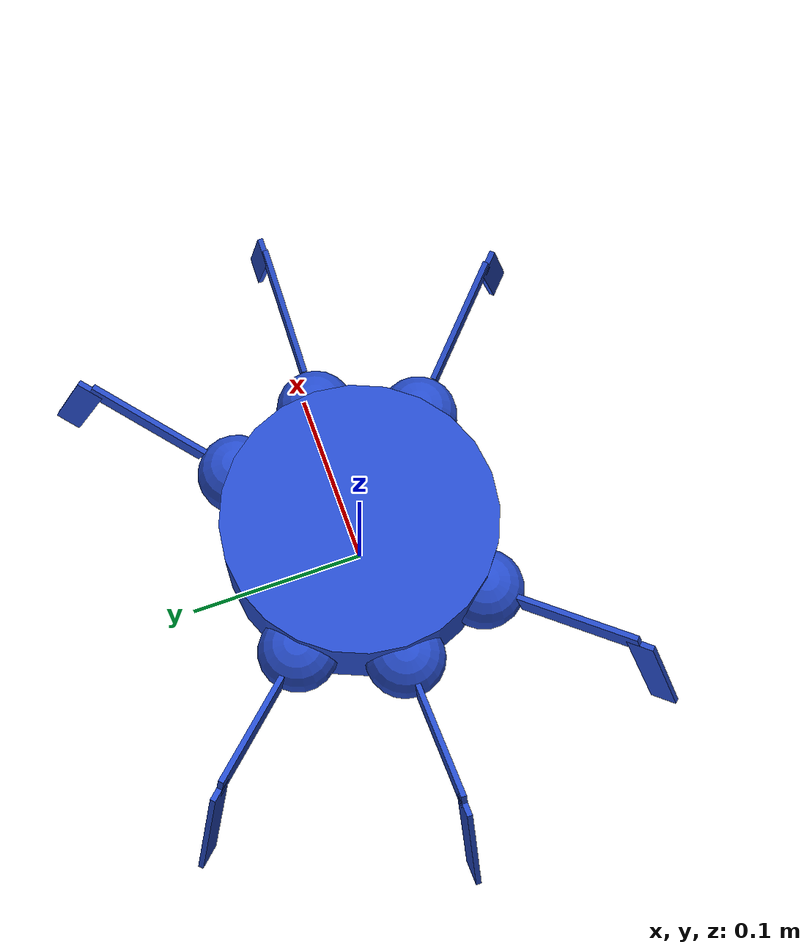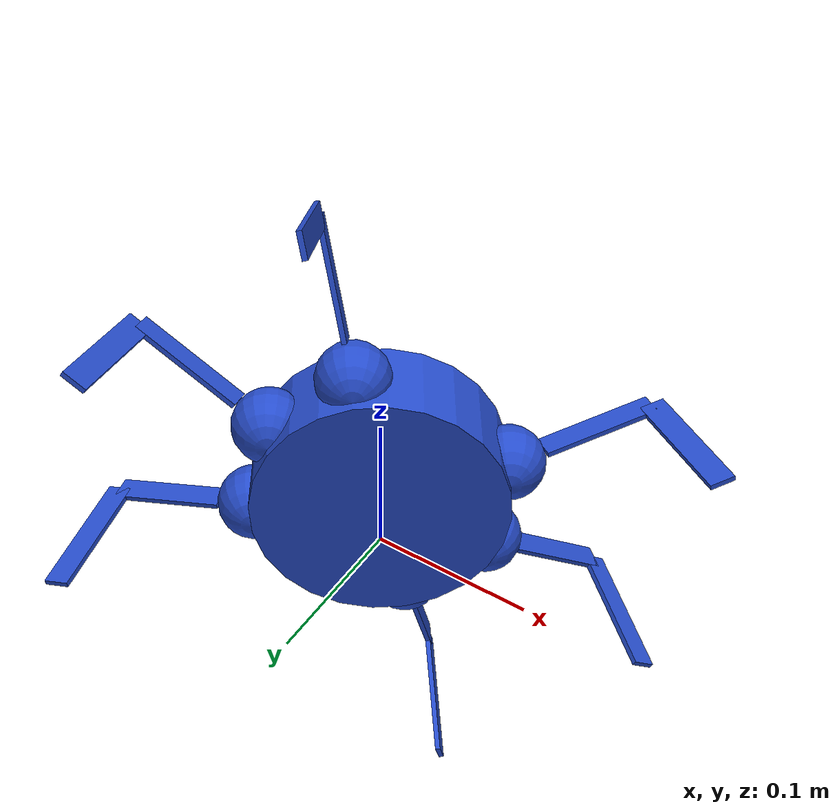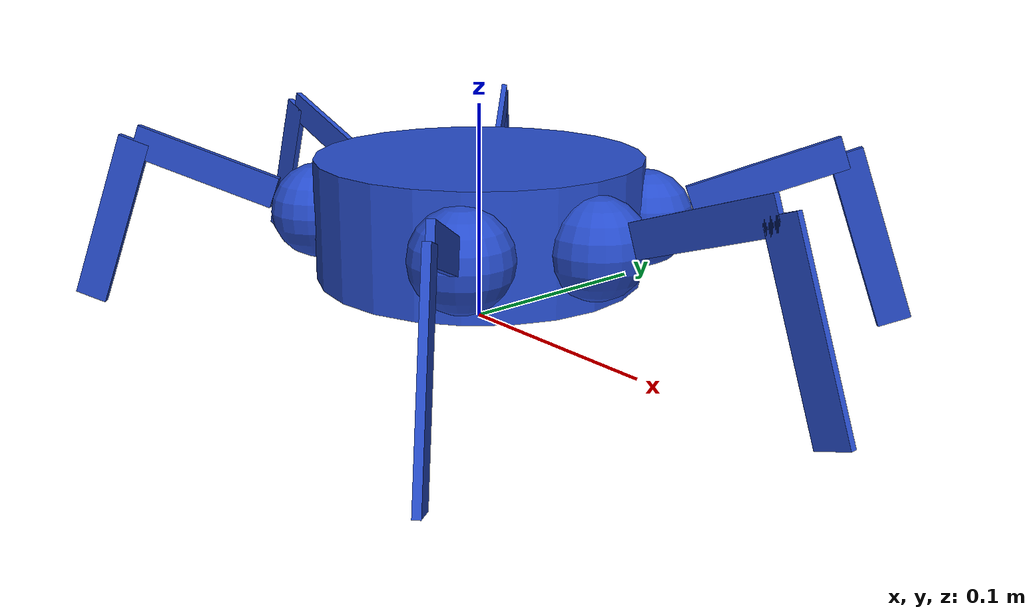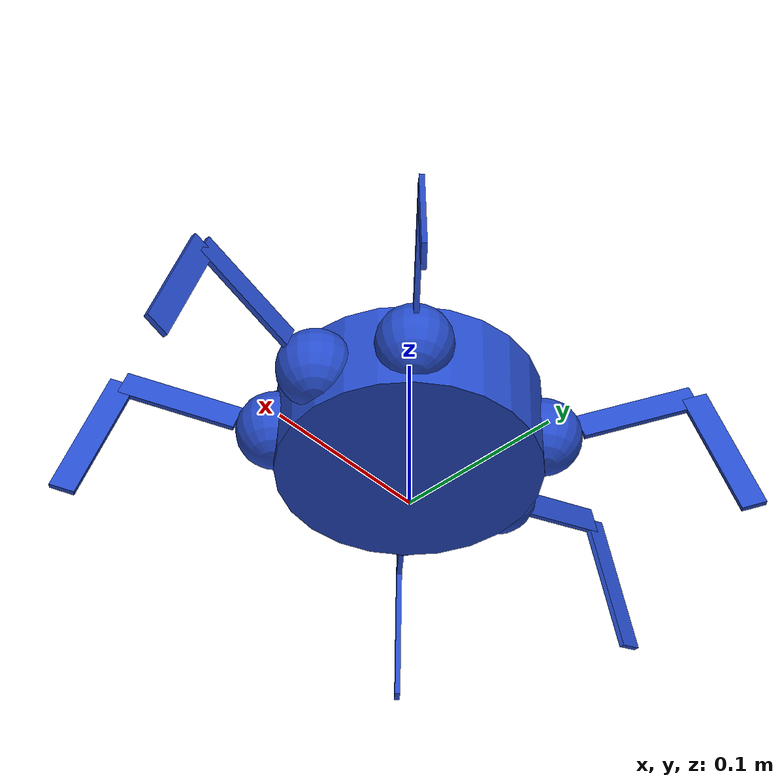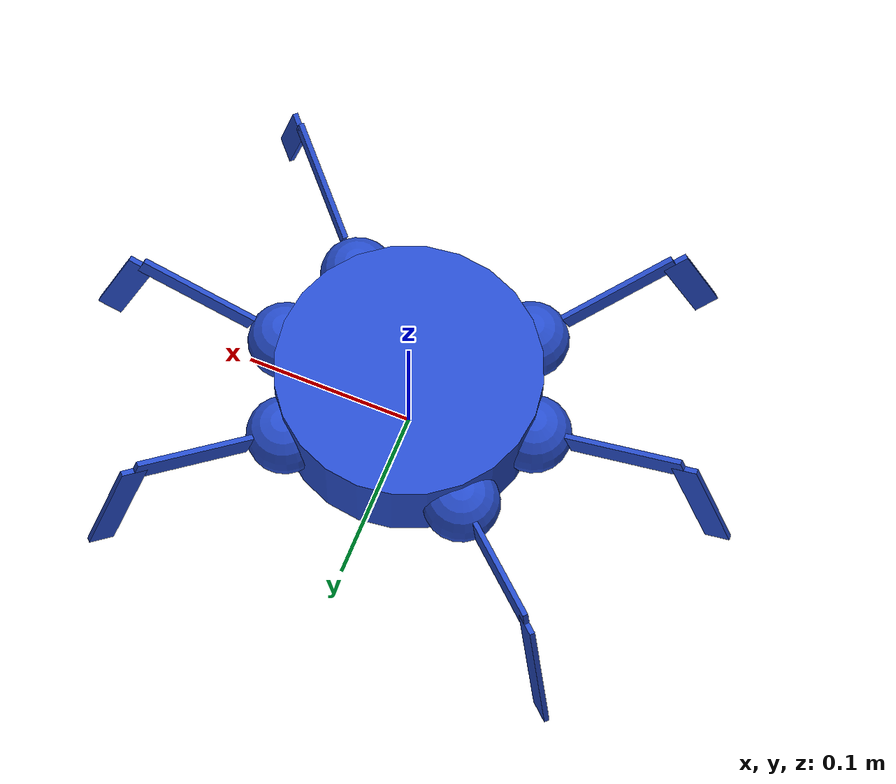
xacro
<?xml version="1.0"?>

<robot xmlns:xacro="http://www.ros.org/wiki/xacro" name="hexapod_robot">

<xacro:include filename="$(find hexapod)/model/gazebo.xacro" />

<!-- Body dimensions -->
<xacro:property name="r" value="0.075" />
<xacro:property name="h" value="0.055" />

<!-- Leg dimensions -->
<xacro:property name="th" value="0.003" />
<xacro:property name="w" value="0.015" />
<xacro:property name="r_hip" value="0.022"/>
<xacro:property name="l_femur" value="0.07" />
<xacro:property name="l_tibia" value="0.0825" />

<!-- Density -->
<xacro:property name="d" value="2710.0" />

<!-- Masses -->
<xacro:property name="m1" value="${r*h*d}" />
<xacro:property name="m2" value="${d*(4/3)*pi*r_hip*r_hip*r_hip}" />
<xacro:property name="m3" value="${d*th*w*l_femur}" />
<xacro:property name="m4" value="${d*th*w*l_tibia}" />

<!-- Moments of inertia for the robot body -->
<xacro:property name="Ix_body" value="${(1/12)*m1*(3*r*r+h*h)}" />
<xacro:property name="Iy_body" value="${(1/12)*m1*(3*r*r+h*h)}" />
<xacro:property name="Iz_body" value="${(1/12)*m1*r*r}" />

<!-- Moments of inertia for robot hip yaw joint -->
<xacro:property name="I_hip" value="${(2/5)*m2*(r_hip*r_hip)}" />

<!-- Moments of inertia for robot femur -->
<xacro:property name="Ix_femur" value="${(1/12)*m3*(w*w+th*th)}" />
<xacro:property name="Iy_femur" value="${(1/12)*m3*(l_femur*l_femur+w*w)}" />
<xacro:property name="Iz_femur" value="${(1/12)*m3*(l_femur*l_femur+th*th)}" />

<!-- Moments of inertia for robot tibia -->
<xacro:property name="Ix_tibia" value="${(1/12)*m3*(w*w+th*th)}" />
<xacro:property name="Iy_tibia" value="${(1/12)*m3*(l_tibia*l_femur+w*w)}" />
<xacro:property name="Iz_tibia" value="${(1/12)*m3*(l_tibia*l_femur+th*th)}" />

<link name="base_footprint" />

<joint name="body_link_joint" type="fixed">
    <parent link="base_footprint"/>
    <child link="body_link"/>
</joint>

<link name="body_link">
    <visual>
        <geometry>
            <cylinder radius="${r}" length="${h}"/>
        </geometry>
        <origin rpy="0 0 0" xyz="0 0 0.0495"/>
    </visual>

    <collision>
        <geometry>
            <cylinder radius="${r}" length="${h}"/>
        </geometry>
        <origin rpy="0 0 0" xyz="0 0 0.0495"/>
    </collision>

    <inertial>
        <origin rpy="0 0 0" xyz="0 0 0.0495" />
        <mass value="${m1}"/>
        <inertia ixx="${Ix_body}" ixy="0.0" ixz="0.0" iyy="${Iy_body}" iyz="0.0" izz="${Iz_body}"/>
    </inertial>
</link>

<xacro:macro name="leg" params="name hip_angle direction">

    <joint name="${name}_hip_joint" type="revolute">
        <parent link="body_link"/>
        <child link="${name}_hip_link"/>
        <origin xyz="${cos(hip_angle)*r} ${sin(hip_angle)*r} 0.0495" rpy="0 0 ${hip_angle}"/>
        <axis xyz="0 0 ${direction * 1}"/>
        <limit lower="-1.5" upper="1.5" effort="50000" velocity="4"/>
        <dynamics damping="1.0" friction="1.0"/>
    </joint>

    <link name="${name}_hip_link">
        <visual>
            <geometry>
                <sphere radius="${r_hip}"/>
            </geometry>
        </visual>
        <collision>
            <geometry>
                <sphere radius="${r_hip}"/>
            </geometry>
        </collision>
        <inertial>
            <mass value="${m2}"/>
            <inertia ixx="${I_hip}" ixy="0.0" ixz="0.0" iyy="${I_hip}" iyz="0.0" izz="${I_hip}"/>
        </inertial>
    </link>

    <joint name="${name}_femur_joint" type="revolute">
        <parent link="${name}_hip_link"/>
        <child link="${name}_femur_link"/>
        <origin xyz="0 0 0" rpy="0 ${-radians(20)} 0"/>
        <axis xyz="0 -1 0"/>
        <limit lower="-1.5" upper="1.5" effort="50000" velocity="4"/>
        <dynamics damping="1.0" friction="1.0"/>
    </joint>

    <link name="${name}_femur_link">
        <visual>
            <origin xyz="${((l_femur/2)+(r_hip))} 0 0" rpy="0 0 0"/>
            <geometry>
                <box size="${l_femur} ${th} ${w}"/>
            </geometry>
        </visual>
        <collision>
            <origin xyz="${((l_femur/2)+(r_hip))} 0 0" rpy="0 0 0"/>
            <geometry>
                <box size="${l_femur} ${th} ${w}"/>
            </geometry>
        </collision>
        <inertial>
            <mass value="${m1}"/>
            <inertia ixx="${Ix_femur}" ixy="0.0" ixz="0.0" iyy="${Iy_femur}" iyz="0.0" izz="${Iz_femur}"/>
        </inertial>
    </link>

    <joint name="${name}_tibia_joint" type="revolute">
        <parent link="${name}_femur_link"/>
        <child link="${name}_tibia_link"/>
        <origin xyz="${(r_hip+l_femur)} 0 0" rpy="0 ${direction * pi/2} 0"/>
        <axis xyz="0 -1 0"/>
        <limit lower="-1.5" upper="1.5" effort="50000" velocity="4"/>
        <dynamics damping="1.0" friction="1.0"/>
    </joint>

    <link name="${name}_tibia_link">
        <visual>
            <origin xyz="${direction * l_tibia/2} 0 0"/>
            <geometry>
                <box size="${l_tibia} ${th} ${w}"/>
            </geometry>
        </visual>
        <collision>
            <origin xyz="${direction * l_tibia/2} 0 0"/>
            <geometry>
                <box size="${l_tibia} ${th} ${w}"/>
            </geometry>
        </collision>
        <inertial>
            <mass value="${m1}"/>
            <inertia ixx="${Ix_tibia}" ixy="0.0" ixz="0.0" iyy="${Iy_tibia}" iyz="0.0" izz="${Iz_tibia}"/>
        </inertial>
    </link>

</xacro:macro>

<xacro:leg name="rm" hip_angle="0" direction="1"/>
<xacro:leg name="ru" hip_angle="${radians(45)}" direction="1"/>
<xacro:leg name="lu" hip_angle="${radians(135)}" direction="-1"/>
<xacro:leg name="lm" hip_angle="${radians(180)}" direction="-1"/>
<xacro:leg name="ld" hip_angle="${radians(225)}" direction="-1"/>
<xacro:leg name="rd" hip_angle="${radians(315)}" direction="1"/>

<xacro:macro name="leg_joints" params="name">
    <joint name="${name}_hip_joint">
        <command_interface name="position">
            <param name="min">-1.571</param>
            <param name="max">1.571</param>
        </command_interface>
        <state_interface name="position"/>
    </joint>
    <joint name="${name}_femur_joint">
        <command_interface name="position">
            <param name="min">-1.571</param>
            <param name="max">1.571</param>
        </command_interface>
        <state_interface name="position"/>
    </joint>
    <joint name="${name}_tibia_joint">
        <command_interface name="position">
            <param name="min">-1.571</param>
            <param name="max">1.571</param>
        </command_interface>
        <state_interface name="position"/>
    </joint>
</xacro:macro>

<ros2_control name="RobotController" type="system">
    <hardware>
        <plugin>gz_ros2_control/GazeboSimSystem</plugin>
    </hardware>

    <xacro:leg_joints name="rm"/>
    <xacro:leg_joints name="ru"/>
    <xacro:leg_joints name="rd"/>
    <xacro:leg_joints name="lm"/>
    <xacro:leg_joints name="lu"/>
    <xacro:leg_joints name="ld"/>
</ros2_control>

</robot>
